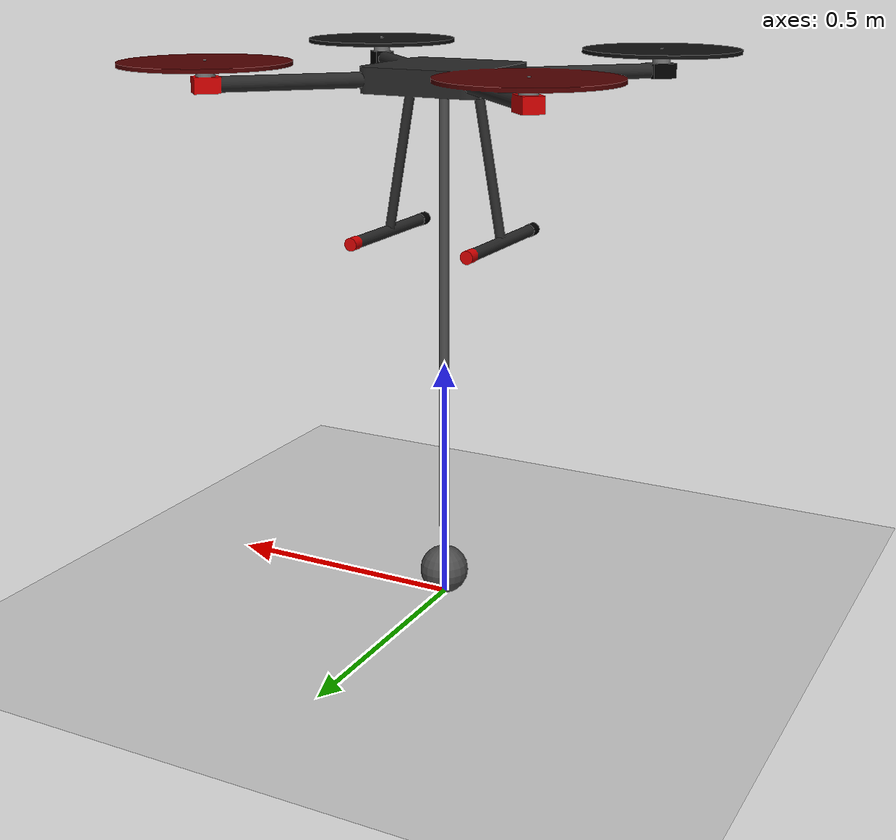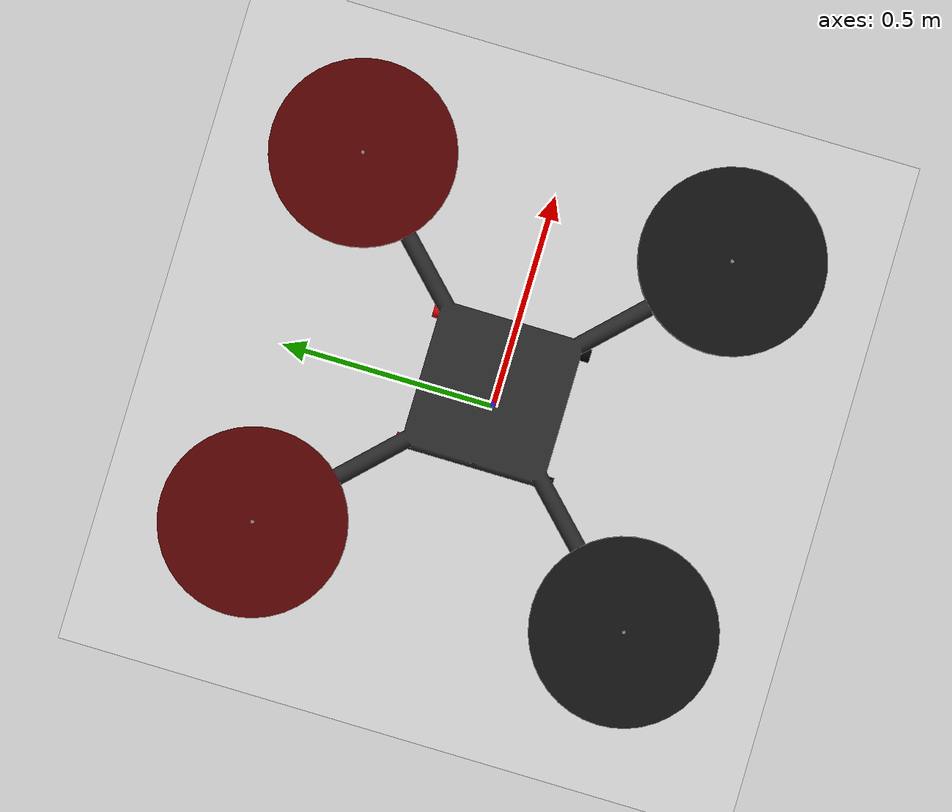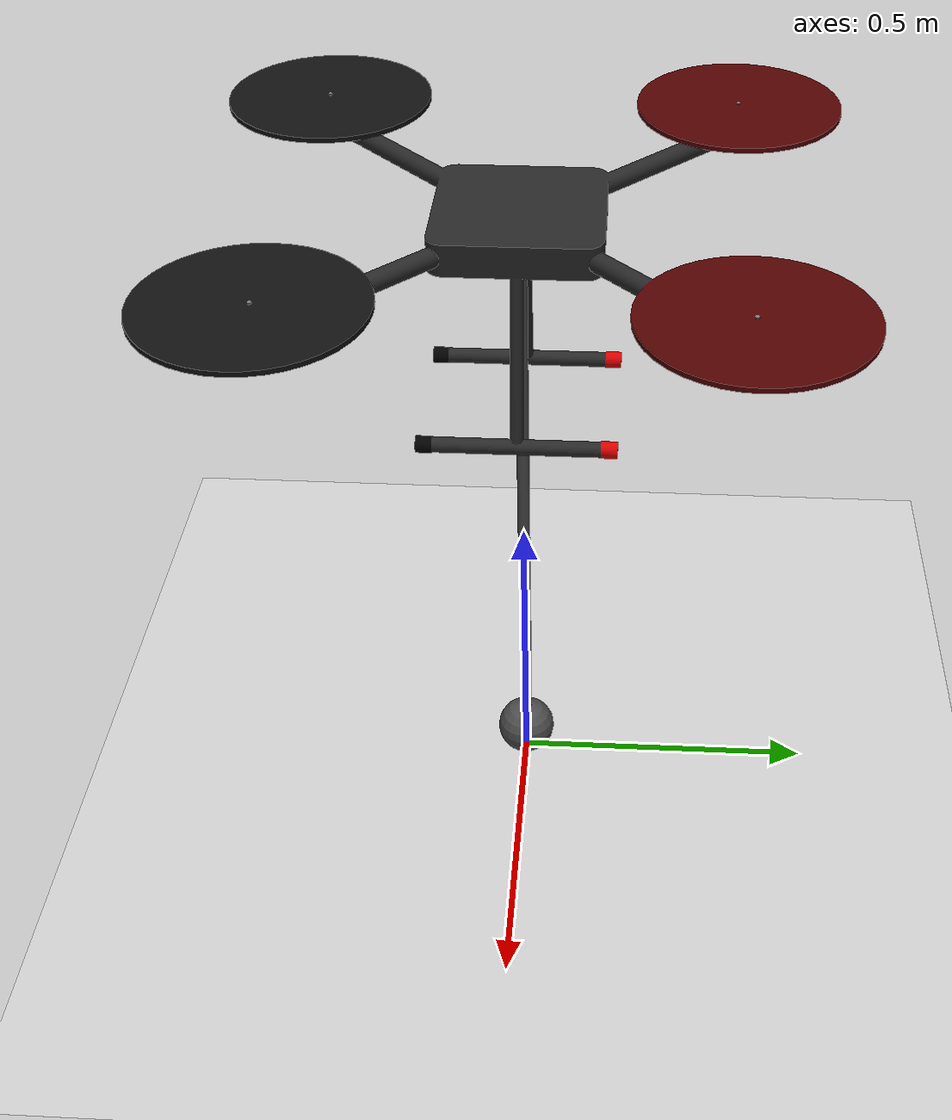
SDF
<?xml version="1.0" ?>
<sdf version="1.5">
  <world name="default">
    <!-- A global light source -->
    <include>
      <uri>model://sun</uri>
    </include>
    <!-- A ground plane -->
    <include>
      <uri>model://ground_plane</uri>
    </include>
    <!-- Quadrotor -->
    <include>
      <uri>model://griffin_payload</uri>
      <pose>0 0 0 0 0 1.57</pose>
    </include>

    <!-- Only one ROS interface plugin is required per world, as any other plugin can connect a Gazebo
         topic to a ROS topic (or vise versa). -->

    <physics name='default_physics' default='0' type='ode'>
      <gravity>0 0 -9.8066</gravity>
      <ode>
        <solver>
          <type>quick</type>
          <iters>10</iters>
          <sor>1.3</sor>
          <use_dynamic_moi_rescaling>0</use_dynamic_moi_rescaling>
        </solver>
        <constraints>
          <cfm>0</cfm>
          <erp>0.2</erp>
          <contact_max_correcting_vel>100</contact_max_correcting_vel>
          <contact_surface_layer>0.001</contact_surface_layer>
        </constraints>
      </ode>
      <max_step_size>0.004</max_step_size>
      <real_time_factor>1</real_time_factor>
      <real_time_update_rate>250</real_time_update_rate>
      <magnetic_field>6.0e-6 2.3e-5 -4.2e-5</magnetic_field>
    </physics>
    <gui fullscreen='0'>
      <camera name='user_camera'>
        <pose>0 -10 6 0 0.3 1.5707</pose>
      </camera>
    </gui>
  </world>
</sdf>

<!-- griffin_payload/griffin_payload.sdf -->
<sdf version='1.6'>
  <model name='griffin_payload'>
    <link name='base_link'>
      <pose frame=''>0 0 0.75 0 0 0</pose>
      <inertial>
        <pose frame=''>0 0 0.3 0 0 0</pose>
        <mass>4.5</mass>
        <inertia>
          <ixx>0.23</ixx>
          <ixy>0</ixy>
          <ixz>0</ixz>
          <iyy>0.235</iyy>
          <iyz>0</iyz>
          <izz>0.328</izz>
        </inertia>
      </inertial>
      <collision name='base_link_inertia_collision'>
        <pose frame=''>0 0 0 0 0 1.570796</pose>
        <geometry>
          <mesh>
            <scale>1 1 1</scale>
            <uri>model://griffin_payload/meshes/griffin.dae</uri>
          </mesh>
        </geometry>
        <surface>
          <contact>
            <ode>
              <min_depth>0.001</min_depth>
              <max_vel>0</max_vel>
            </ode>
          </contact>
          <friction>
            <ode/>
          </friction>
        </surface>
      </collision>
      <visual name='base_link_inertia_visual'>
        <pose frame=''>0 0 0 0 0 1.570796</pose>
        <geometry>
          <mesh>
            <scale>1 1 1</scale>
            <uri>model://griffin_payload/meshes/griffin.dae</uri>
          </mesh>
        </geometry>
      </visual>
      <gravity>1</gravity>
      <velocity_decay/>
    </link>

    <link name="payload_link">
      <pose frame=''>0 0 0.05 0 0 0</pose>
      <inertial>
        <pose frame=''>0 0 0 0 0 0</pose>
        <mass>2</mass>
        <inertia>
          <ixx>0.0005</ixx>
          <ixy>0</ixy>
          <ixz>0</ixz>
          <iyy>0.0005</iyy>
          <iyz>0</iyz>
          <izz>0.0005</izz>
        </inertia>
      </inertial>
      <collision name='payload_link_collision'>
        <pose frame=''>0 0 0 0 0 0</pose>
        <geometry>
          <sphere>
            <radius>0.05</radius>
          </sphere>
        </geometry>
        <surface>
          <contact>
            <ode>
              <min_depth>0.001</min_depth>
              <max_vel>0</max_vel>
            </ode>
          </contact>
          <friction>
            <ode/>
          </friction>
        </surface>
      </collision>
      <visual name='payload_link_spehere_visual'>
        <pose frame=''>0 0 0 0 0 0</pose>
        <geometry>
          <sphere>
            <radius>0.05</radius>
          </sphere>
        </geometry>
        <material>
          <script>
            <name>Gazebo/DarkGrey</name>
            <uri>file://media/materials/scripts/gazebo.material</uri>
          </script>
        </material>
      </visual>
      <visual name='payload_link_pendulum_visual'>
        <pose frame=''>0 0 0.5 0 0 0</pose>
        <geometry>
           <cylinder>
            <radius>0.01</radius>
            <length>1</length>
          </cylinder>
        </geometry>
        <material>
          <script>
            <name>Gazebo/DarkGrey</name>
            <uri>file://media/materials/scripts/gazebo.material</uri>
          </script>
        </material>
      </visual>
      <gravity>1</gravity>
      <velocity_decay/>
    </link>

    <joint type="revolute" name="quad_pendulum_joint">
      <pose>0 0 1 0 0 0</pose>
      <child>payload_link</child>
      <parent>base_link</parent>
      <axis>
        <xyz>0 1 0</xyz>
        <dynamics>
          <damping>0</damping>
          <spring_stiffness>0</spring_stiffness>
        </dynamics>
      </axis>
    </joint>

    <static>0</static>

    <plugin name='mavlink_interface' filename='libgazebo_mavlink_interface.so'>
      <robotNamespace/>
      <imuSubTopic>/imu</imuSubTopic>
      <gpsSubTopic>/gps</gpsSubTopic>
      <magSubTopic>/mag</magSubTopic>
      <baroSubTopic>/baro</baroSubTopic>
      <motorCommandPubTopic>/command/motor</motorCommandPubTopic>

      <noise>true</noise>

      <mavlink_addr>INADDR_ANY</mavlink_addr>
      <mavlink_tcp_port>4560</mavlink_tcp_port>
      <enable_lockstep>true</enable_lockstep>
      <use_tcp>true</use_tcp>

      <hil_mode>false</hil_mode>
      <serialEnabled>false</serialEnabled>
      <hil_state_level>false</hil_state_level>
      <qgc_addr>INADDR_ANY</qgc_addr>
      <qgc_udp_port>14550</qgc_udp_port>
      <mavlink_udp_port>14560</mavlink_udp_port>
      <serialDevice>/dev/ttyACM0</serialDevice>
      <baudRate>921600</baudRate>

      <vehicle_is_tailsitter>false</vehicle_is_tailsitter>
      <send_vision_estimation>false</send_vision_estimation>
      <send_odometry>false</send_odometry>
    </plugin>

    <plugin name='actuators' filename='libgazebo_forces_moments_actuators_plugin.so'>
      <robotNamespace/>
      <linkName>base_link</linkName>
      <copterConfig>4x</copterConfig>
      <motorTimeConstant>0.07</motorTimeConstant>
      <armLength>0.49</armLength>
      <virtualYawMomentArm>0.0237</virtualYawMomentArm>

      <!-- Use maxMotorThrust for a linear motor model or motor_models for a complete 3rd order motor model -->

      <motor_models>
        <motor name='motor1'>
          <motor_index>0</motor_index>
          <coeffs>-0.0000000397959403 0.0001996456801152 -0.2773896905520106 118.7667175238575652</coeffs>
        </motor>
        <motor name='motor2'>
          <motor_index>1</motor_index>
          <coeffs>-0.0000000413595098 0.0002069219596305 -0.2858221900173662 121.2675504198610383</coeffs>
        </motor>
        <motor name='motor3'>
          <motor_index>2</motor_index>
          <coeffs>-0.0000000406769540 0.0002028435504012 -0.2787807080476987 117.7570545685150876</coeffs>
        </motor>
        <motor name='motor4'>
          <motor_index>3</motor_index>
          <coeffs>-0.0000000386173758 0.0001927613593388 -0.2630242287303664 109.8400430499503813</coeffs>
        </motor>
      </motor_models>
    </plugin>

    <plugin name="gps_plugin" filename="libgazebo_gps_plugin.so">
        <robotNamespace></robotNamespace>
        <gpsNoise>true</gpsNoise>
    </plugin>

    <plugin name='magnetometer_plugin' filename='libgazebo_magnetometer_plugin.so'>
      <robotNamespace/>
      <pubRate>20</pubRate>
      <noiseDensity>0.0004</noiseDensity>
      <randomWalk>6.4e-06</randomWalk>
      <biasCorrelationTime>600</biasCorrelationTime>
      <magTopic>/mag</magTopic>
      <magNoise>true</magNoise>
    </plugin>

    <plugin name='barometer_plugin' filename='libgazebo_barometer_plugin.so'>
      <robotNamespace/>
      <pubRate>10</pubRate>
      <baroTopic>/baro</baroTopic>
      <baroNoise>true</baroNoise>
    </plugin>

    <plugin name='gazebo_imu_plugin' filename='libgazebo_imu_plugin.so'>
      <robotNamespace/>
      <linkName>base_link</linkName>
      <imuTopic>/imu</imuTopic>
      <gyroscopeNoiseDensity>0.0003394</gyroscopeNoiseDensity>
      <gyroscopeRandomWalk>3.8785e-05</gyroscopeRandomWalk>
      <gyroscopeBiasCorrelationTime>1000.0</gyroscopeBiasCorrelationTime>
      <gyroscopeTurnOnBiasSigma>0.0087</gyroscopeTurnOnBiasSigma>
      <accelerometerNoiseDensity>0.004</accelerometerNoiseDensity>
      <accelerometerRandomWalk>0.006</accelerometerRandomWalk>
      <accelerometerBiasCorrelationTime>300.0</accelerometerBiasCorrelationTime>
      <accelerometerTurnOnBiasSigma>0.196</accelerometerTurnOnBiasSigma>
      <imuNoise>true</imuNoise>
    </plugin>
  </model>
</sdf>
